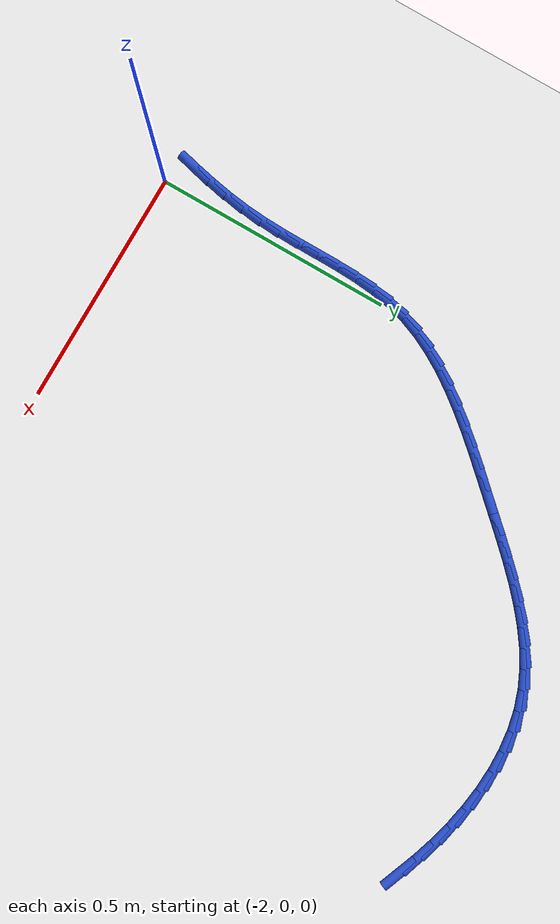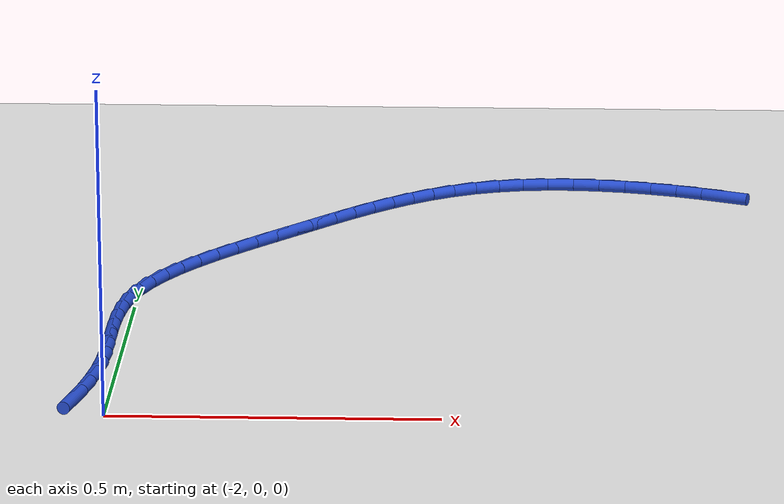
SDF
<sdf version="1.6">
 <world name="default">
  <model name="ground_plane">
   <static>1</static>
   <link name="link">
    <collision name="collision">
     <geometry><plane><normal>0 0 1</normal><size>100 100</size></plane></geometry>
     <surface><friction><ode><mu>100</mu><mu2>50</mu2></ode></friction></surface>
    </collision>
    <visual name="visual">
     <cast_shadows>0</cast_shadows>
     <geometry><plane><normal>0 0 1</normal><size>100 100</size></plane></geometry>
     <material>
      <script><uri>file://media/materials/scripts/gazebo.material</uri><name>Gazebo/WhiteGlow</name></script>
     </material>
    </visual>
   </link>
  </model>
  <model name="line">
   <link name="link_38">
    <pose>-1.0534748251771269 1.0840542908603117 0.01 0 1.57 -0.3746542257135561</pose>
    <collision name="collision">
     <geometry><cylinder><radius>0.01</radius><length>0.08</length></cylinder></geometry>
    </collision>
    <visual name="visual">
     <material>
      <script><name>Gazebo/Blue</name><uri>file://media/materials/scripts/gazebo.material</uri></script>
     </material>
     <geometry><cylinder><radius>0.01</radius><length>0.08</length></cylinder></geometry>
    </visual>
   </link>
   <link name="link_39">
    <pose>-1.0954421093681261 1.1005569719158432 0.01 0 1.57 -0.32050676634650327</pose>
    <collision name="collision">
     <geometry><cylinder><radius>0.01</radius><length>0.08</length></cylinder></geometry>
    </collision>
    <visual name="visual">
     <material>
      <script><name>Gazebo/Blue</name><uri>file://media/materials/scripts/gazebo.material</uri></script>
     </material>
     <geometry><cylinder><radius>0.01</radius><length>0.08</length></cylinder></geometry>
    </visual>
   </link>
   <link name="link_40">
    <pose>-1.1384295521239123 1.1148267360155222 0.01 0 1.57 -0.2634448168717703</pose>
    <collision name="collision">
     <geometry><cylinder><radius>0.01</radius><length>0.08</length></cylinder></geometry>
    </collision>
    <visual name="visual">
     <material>
      <script><name>Gazebo/Blue</name><uri>file://media/materials/scripts/gazebo.material</uri></script>
     </material>
     <geometry><cylinder><radius>0.01</radius><length>0.08</length></cylinder></geometry>
    </visual>
   </link>
   <link name="link_41">
    <pose>-1.1821002102781097 1.1266053037100558 0.01 0 1.57 -0.20232114689277186</pose>
    <collision name="collision">
     <geometry><cylinder><radius>0.01</radius><length>0.08</length></cylinder></geometry>
    </collision>
    <visual name="visual">
     <material>
      <script><name>Gazebo/Blue</name><uri>file://media/materials/scripts/gazebo.material</uri></script>
     </material>
     <geometry><cylinder><radius>0.01</radius><length>0.08</length></cylinder></geometry>
    </visual>
   </link>
   <link name="link_42">
    <pose>-1.2261171406643419 1.135634395550152 0.01 0 1.57 -0.1359236281425983</pose>
    <collision name="collision">
     <geometry><cylinder><radius>0.01</radius><length>0.08</length></cylinder></geometry>
    </collision>
    <visual name="visual">
     <material>
      <script><name>Gazebo/Blue</name><uri>file://media/materials/scripts/gazebo.material</uri></script>
     </material>
     <geometry><cylinder><radius>0.01</radius><length>0.08</length></cylinder></geometry>
    </visual>
   </link>
   <link name="link_43">
    <pose>-1.2701434001162317 1.1416557320865175 0.01 0 1.57 -0.06296898045122024</pose>
    <collision name="collision">
     <geometry><cylinder><radius>0.01</radius><length>0.08</length></cylinder></geometry>
    </collision>
    <visual name="visual">
     <material>
      <script><name>Gazebo/Blue</name><uri>file://media/materials/scripts/gazebo.material</uri></script>
     </material>
     <geometry><cylinder><radius>0.01</radius><length>0.08</length></cylinder></geometry>
    </visual>
   </link>
   <link name="link_44">
    <pose>-1.313842045467404 1.1444110338698605 0.01 0 1.57 0.017867941724929177</pose>
    <collision name="collision">
     <geometry><cylinder><radius>0.01</radius><length>0.08</length></cylinder></geometry>
    </collision>
    <visual name="visual">
     <material>
      <script><name>Gazebo/Blue</name><uri>file://media/materials/scripts/gazebo.material</uri></script>
     </material>
     <geometry><cylinder><radius>0.01</radius><length>0.08</length></cylinder></geometry>
    </visual>
   </link>
   <link name="link_45">
    <pose>-1.3568761335514812 1.1436420214508887 0.01 0 1.57 0.10786723949178444</pose>
    <collision name="collision">
     <geometry><cylinder><radius>0.01</radius><length>0.08</length></cylinder></geometry>
    </collision>
    <visual name="visual">
     <material>
      <script><name>Gazebo/Blue</name><uri>file://media/materials/scripts/gazebo.material</uri></script>
     </material>
     <geometry><cylinder><radius>0.01</radius><length>0.08</length></cylinder></geometry>
    </visual>
   </link>
   <link name="link_46">
    <pose>-1.3989087212020876 1.1390904153803083 0.01 0 1.57 0.20809126432651076</pose>
    <collision name="collision">
     <geometry><cylinder><radius>0.01</radius><length>0.08</length></cylinder></geometry>
    </collision>
    <visual name="visual">
     <material>
      <script><name>Gazebo/Blue</name><uri>file://media/materials/scripts/gazebo.material</uri></script>
     </material>
     <geometry><cylinder><radius>0.01</radius><length>0.08</length></cylinder></geometry>
    </visual>
   </link>
   <link name="link_47">
    <pose>-1.4396028652528463 1.130497936208828 0.01 0 1.57 0.31896822076236286</pose>
    <collision name="collision">
     <geometry><cylinder><radius>0.01</radius><length>0.08</length></cylinder></geometry>
    </collision>
    <visual name="visual">
     <material>
      <script><name>Gazebo/Blue</name><uri>file://media/materials/scripts/gazebo.material</uri></script>
     </material>
     <geometry><cylinder><radius>0.01</radius><length>0.08</length></cylinder></geometry>
    </visual>
   </link>
   <link name="link_48">
    <pose>-1.4786251119743778 1.117611045731805 0.01 0 1.57 0.4317569409458788</pose>
    <collision name="collision">
     <geometry><cylinder><radius>0.01</radius><length>0.08</length></cylinder></geometry>
    </collision>
    <visual name="visual">
     <material>
      <script><name>Gazebo/Blue</name><uri>file://media/materials/scripts/gazebo.material</uri></script>
     </material>
     <geometry><cylinder><radius>0.01</radius><length>0.08</length></cylinder></geometry>
    </visual>
   </link>
   <link name="link_49">
    <pose>-1.5158504911998227 1.100459481120133 0.01 0 1.57 0.5315474989459231</pose>
    <collision name="collision">
     <geometry><cylinder><radius>0.01</radius><length>0.08</length></cylinder></geometry>
    </collision>
    <visual name="visual">
     <material>
      <script><name>Gazebo/Blue</name><uri>file://media/materials/scripts/gazebo.material</uri></script>
     </material>
     <geometry><cylinder><radius>0.01</radius><length>0.08</length></cylinder></geometry>
    </visual>
   </link>
   <link name="link_50">
    <pose>-1.5514766757755392 1.0795113681621415 0.01 0 1.57 0.615846117902603</pose>
    <collision name="collision">
     <geometry><cylinder><radius>0.01</radius><length>0.08</length></cylinder></geometry>
    </collision>
    <visual name="visual">
     <material>
      <script><name>Gazebo/Blue</name><uri>file://media/materials/scripts/gazebo.material</uri></script>
     </material>
     <geometry><cylinder><radius>0.01</radius><length>0.08</length></cylinder></geometry>
    </visual>
   </link>
   <link name="link_51">
    <pose>-1.5857290336706389 1.0552724631730186 0.01 0 1.57 0.6846235005672875</pose>
    <collision name="collision">
     <geometry><cylinder><radius>0.01</radius><length>0.08</length></cylinder></geometry>
    </collision>
    <visual name="visual">
     <material>
      <script><name>Gazebo/Blue</name><uri>file://media/materials/scripts/gazebo.material</uri></script>
     </material>
     <geometry><cylinder><radius>0.01</radius><length>0.08</length></cylinder></geometry>
    </visual>
   </link>
   <link name="link_52">
    <pose>-1.6188329328542335 1.028248522467953 0.01 0 1.57 0.7386300824438513</pose>
    <collision name="collision">
     <geometry><cylinder><radius>0.01</radius><length>0.08</length></cylinder></geometry>
    </collision>
    <visual name="visual">
     <material>
      <script><name>Gazebo/Blue</name><uri>file://media/materials/scripts/gazebo.material</uri></script>
     </material>
     <geometry><cylinder><radius>0.01</radius><length>0.08</length></cylinder></geometry>
    </visual>
   </link>
   <link name="link_53">
    <pose>-1.6510137412954358 0.9989453023621324 0.01 0 1.57 0.7789029927780443</pose>
    <collision name="collision">
     <geometry><cylinder><radius>0.01</radius><length>0.08</length></cylinder></geometry>
    </collision>
    <visual name="visual">
     <material>
      <script><name>Gazebo/Blue</name><uri>file://media/materials/scripts/gazebo.material</uri></script>
     </material>
     <geometry><cylinder><radius>0.01</radius><length>0.08</length></cylinder></geometry>
    </visual>
   </link>
   <link name="link_54">
    <pose>-1.682496826963357 0.9678685591707453 0.01 0 1.57 0.806447441847633</pose>
    <collision name="collision">
     <geometry><cylinder><radius>0.01</radius><length>0.08</length></cylinder></geometry>
    </collision>
    <visual name="visual">
     <material>
      <script><name>Gazebo/Blue</name><uri>file://media/materials/scripts/gazebo.material</uri></script>
     </material>
     <geometry><cylinder><radius>0.01</radius><length>0.08</length></cylinder></geometry>
    </visual>
   </link>
   <link name="link_55">
    <pose>-1.7135075578271097 0.9355240492089798 0.01 0 1.57 0.82206196255046</pose>
    <collision name="collision">
     <geometry><cylinder><radius>0.01</radius><length>0.08</length></cylinder></geometry>
    </collision>
    <visual name="visual">
     <material>
      <script><name>Gazebo/Blue</name><uri>file://media/materials/scripts/gazebo.material</uri></script>
     </material>
     <geometry><cylinder><radius>0.01</radius><length>0.08</length></cylinder></geometry>
    </visual>
   </link>
   <link name="link_56">
    <pose>-1.7442713018558058 0.9024175287920229 0.01 0 1.57 0.8262953286771116</pose>
    <collision name="collision">
     <geometry><cylinder><radius>0.01</radius><length>0.08</length></cylinder></geometry>
    </collision>
    <visual name="visual">
     <material>
      <script><name>Gazebo/Blue</name><uri>file://media/materials/scripts/gazebo.material</uri></script>
     </material>
     <geometry><cylinder><radius>0.01</radius><length>0.08</length></cylinder></geometry>
    </visual>
   </link>
   <link name="link_57">
    <pose>-1.775012148666819 0.869053512135963 0.01 0 1.57 0.8255865061730806</pose>
    <collision name="collision">
     <geometry><cylinder><radius>0.01</radius><length>0.08</length></cylinder></geometry>
    </collision>
    <visual name="visual">
     <material>
      <script><name>Gazebo/Blue</name><uri>file://media/materials/scripts/gazebo.material</uri></script>
     </material>
     <geometry><cylinder><radius>0.01</radius><length>0.08</length></cylinder></geometry>
    </visual>
   </link>
   <link name="link_58">
    <pose>-1.8057509955805144 0.8357390834681213 0.01 0 1.57 0.8330159238079928</pose>
    <collision name="collision">
     <geometry><cylinder><radius>0.01</radius><length>0.08</length></cylinder></geometry>
    </collision>
    <visual name="visual">
     <material>
      <script><name>Gazebo/Blue</name><uri>file://media/materials/scripts/gazebo.material</uri></script>
     </material>
     <geometry><cylinder><radius>0.01</radius><length>0.08</length></cylinder></geometry>
    </visual>
   </link>
   <link name="link_59">
    <pose>-1.8360848799427312 0.8023694872401915 0.01 0 1.57 0.8504589798484335</pose>
    <collision name="collision">
     <geometry><cylinder><radius>0.01</radius><length>0.08</length></cylinder></geometry>
    </collision>
    <visual name="visual">
     <material>
      <script><name>Gazebo/Blue</name><uri>file://media/materials/scripts/gazebo.material</uri></script>
     </material>
     <geometry><cylinder><radius>0.01</radius><length>0.08</length></cylinder></geometry>
    </visual>
   </link>
   <link name="link_60">
    <pose>-1.8655577965014776 0.7687884295352961 0.01 0 1.57 0.8784048352163771</pose>
    <collision name="collision">
     <geometry><cylinder><radius>0.01</radius><length>0.08</length></cylinder></geometry>
    </collision>
    <visual name="visual">
     <material>
      <script><name>Gazebo/Blue</name><uri>file://media/materials/scripts/gazebo.material</uri></script>
     </material>
     <geometry><cylinder><radius>0.01</radius><length>0.08</length></cylinder></geometry>
    </visual>
   </link>
   <link name="link_61">
    <pose>-1.8937137400047601 0.7348396164365565 0.01 0 1.57 0.9175587481591925</pose>
    <collision name="collision">
     <geometry><cylinder><radius>0.01</radius><length>0.08</length></cylinder></geometry>
    </collision>
    <visual name="visual">
     <material>
      <script><name>Gazebo/Blue</name><uri>file://media/materials/scripts/gazebo.material</uri></script>
     </material>
     <geometry><cylinder><radius>0.01</radius><length>0.08</length></cylinder></geometry>
    </visual>
   </link>
   <link name="link_62">
    <pose>-1.9200967052005875 0.7003667540270958 0.01 0 1.57 0.9687765132740612</pose>
    <collision name="collision">
     <geometry><cylinder><radius>0.01</radius><length>0.08</length></cylinder></geometry>
    </collision>
    <visual name="visual">
     <material>
      <script><name>Gazebo/Blue</name><uri>file://media/materials/scripts/gazebo.material</uri></script>
     </material>
     <geometry><cylinder><radius>0.01</radius><length>0.08</length></cylinder></geometry>
    </visual>
   </link>
   <link name="link_63">
    <pose>-1.944250686836966 0.6652135483900354 0.01 0 1.57 1.032932779184081</pose>
    <collision name="collision">
     <geometry><cylinder><radius>0.01</radius><length>0.08</length></cylinder></geometry>
    </collision>
    <visual name="visual">
     <material>
      <script><name>Gazebo/Blue</name><uri>file://media/materials/scripts/gazebo.material</uri></script>
     </material>
     <geometry><cylinder><radius>0.01</radius><length>0.08</length></cylinder></geometry>
    </visual>
   </link>
   <link name="link_64">
    <pose>-1.9657196796619039 0.6292237056084983 0.01 0 1.57 1.1106893223865641</pose>
    <collision name="collision">
     <geometry><cylinder><radius>0.01</radius><length>0.08</length></cylinder></geometry>
    </collision>
    <visual name="visual">
     <material>
      <script><name>Gazebo/Blue</name><uri>file://media/materials/scripts/gazebo.material</uri></script>
     </material>
     <geometry><cylinder><radius>0.01</radius><length>0.08</length></cylinder></geometry>
    </visual>
   </link>
   <link name="link_65">
    <pose>-1.9840476784234078 0.592240931765606 0.01 0 1.57 1.2021419151035606</pose>
    <collision name="collision">
     <geometry><cylinder><radius>0.01</radius><length>0.08</length></cylinder></geometry>
    </collision>
    <visual name="visual">
     <material>
      <script><name>Gazebo/Blue</name><uri>file://media/materials/scripts/gazebo.material</uri></script>
     </material>
     <geometry><cylinder><radius>0.01</radius><length>0.08</length></cylinder></geometry>
    </visual>
   </link>
   <link name="link_66">
    <pose>-1.9987786778694856 0.5541089329444808 0.01 0 1.57 1.30553539822531</pose>
    <collision name="collision">
     <geometry><cylinder><radius>0.01</radius><length>0.08</length></cylinder></geometry>
    </collision>
    <visual name="visual">
     <material>
      <script><name>Gazebo/Blue</name><uri>file://media/materials/scripts/gazebo.material</uri></script>
     </material>
     <geometry><cylinder><radius>0.01</radius><length>0.08</length></cylinder></geometry>
    </visual>
   </link>
   <link name="link_67">
    <pose>-2.009489838312924 0.5146807756699984 0.01 0 1.57 1.4024591504643038</pose>
    <collision name="collision">
     <geometry><cylinder><radius>0.01</radius><length>0.08</length></cylinder></geometry>
    </collision>
    <visual name="visual">
     <material>
      <script><name>Gazebo/Blue</name><uri>file://media/materials/scripts/gazebo.material</uri></script>
     </material>
     <geometry><cylinder><radius>0.01</radius><length>0.08</length></cylinder></geometry>
    </visual>
   </link>
   <link name="link_68">
    <pose>-2.0164047186364913 0.47399196196010696 0.01 0 1.57 1.4769411322177208</pose>
    <collision name="collision">
     <geometry><cylinder><radius>0.01</radius><length>0.08</length></cylinder></geometry>
    </collision>
    <visual name="visual">
     <material>
      <script><name>Gazebo/Blue</name><uri>file://media/materials/scripts/gazebo.material</uri></script>
     </material>
     <geometry><cylinder><radius>0.01</radius><length>0.08</length></cylinder></geometry>
    </visual>
   </link>
   <link name="link_69">
    <pose>-2.020334541373556 0.4322438523492146 0.01 0 1.57 1.5290981531068213</pose>
    <collision name="collision">
     <geometry><cylinder><radius>0.01</radius><length>0.08</length></cylinder></geometry>
    </collision>
    <visual name="visual">
     <material>
      <script><name>Gazebo/Blue</name><uri>file://media/materials/scripts/gazebo.material</uri></script>
     </material>
     <geometry><cylinder><radius>0.01</radius><length>0.08</length></cylinder></geometry>
    </visual>
   </link>
   <link name="link_70">
    <pose>-2.0221119142109956 0.3896438429838205 0.01 0 1.57 1.5602166365020065</pose>
    <collision name="collision">
     <geometry><cylinder><radius>0.01</radius><length>0.08</length></cylinder></geometry>
    </collision>
    <visual name="visual">
     <material>
      <script><name>Gazebo/Blue</name><uri>file://media/materials/scripts/gazebo.material</uri></script>
     </material>
     <geometry><cylinder><radius>0.01</radius><length>0.08</length></cylinder></geometry>
    </visual>
   </link>
   <link name="link_71">
    <pose>-2.0225694448356926 0.34639933001042483 0.01 0 1.57 -1.5701163177592612</pose>
    <collision name="collision">
     <geometry><cylinder><radius>0.01</radius><length>0.08</length></cylinder></geometry>
    </collision>
    <visual name="visual">
     <material>
      <script><name>Gazebo/Blue</name><uri>file://media/materials/scripts/gazebo.material</uri></script>
     </material>
     <geometry><cylinder><radius>0.01</radius><length>0.08</length></cylinder></geometry>
    </visual>
   </link>
   <link name="link_72">
    <pose>-2.022539740934527 0.30271770957552824 0.01 0 1.57 1.5636076625105153</pose>
    <collision name="collision">
     <geometry><cylinder><radius>0.01</radius><length>0.08</length></cylinder></geometry>
    </collision>
    <visual name="visual">
     <material>
      <script><name>Gazebo/Blue</name><uri>file://media/materials/scripts/gazebo.material</uri></script>
     </material>
     <geometry><cylinder><radius>0.01</radius><length>0.08</length></cylinder></geometry>
    </visual>
   </link>
   <link name="link_73">
    <pose>-2.0228554101943783 0.2588063778256298 0.01 0 1.57 1.5368115536102331</pose>
    <collision name="collision">
     <geometry><cylinder><radius>0.01</radius><length>0.08</length></cylinder></geometry>
    </collision>
    <visual name="visual">
     <material>
      <script><name>Gazebo/Blue</name><uri>file://media/materials/scripts/gazebo.material</uri></script>
     </material>
     <geometry><cylinder><radius>0.01</radius><length>0.08</length></cylinder></geometry>
    </visual>
   </link>
   <link name="link_74">
    <pose>-2.024349060302127 0.21487273090723066 0.01 0 1.57 1.4912900151780408</pose>
    <collision name="collision">
     <geometry><cylinder><radius>0.01</radius><length>0.08</length></cylinder></geometry>
    </collision>
    <visual name="visual">
     <material>
      <script><name>Gazebo/Blue</name><uri>file://media/materials/scripts/gazebo.material</uri></script>
     </material>
     <geometry><cylinder><radius>0.01</radius><length>0.08</length></cylinder></geometry>
    </visual>
   </link>
   <link name="link_75">
    <pose>-2.0278349789806054 0.17112060123102787 0.01 0 1.57 1.439061428745569</pose>
    <collision name="collision">
     <geometry><cylinder><radius>0.01</radius><length>0.08</length></cylinder></geometry>
    </collision>
    <visual name="visual">
     <material>
      <script><name>Gazebo/Blue</name><uri>file://media/materials/scripts/gazebo.material</uri></script>
     </material>
     <geometry><cylinder><radius>0.01</radius><length>0.08</length></cylinder></geometry>
    </visual>
   </link>
   <link name="link_76">
    <pose>-2.033594902526976 0.12765022533945006 0.01 0 1.57 1.3941419790321197</pose>
    <collision name="collision">
     <geometry><cylinder><radius>0.01</radius><length>0.08</length></cylinder></geometry>
    </collision>
    <visual name="visual">
     <material>
      <script><name>Gazebo/Blue</name><uri>file://media/materials/scripts/gazebo.material</uri></script>
     </material>
     <geometry><cylinder><radius>0.01</radius><length>0.08</length></cylinder></geometry>
    </visual>
   </link>
   <link name="link_77">
    <pose>-2.041307766468012 0.08444457848110261 0.01 0 1.57 1.3573525213867943</pose>
    <collision name="collision">
     <geometry><cylinder><radius>0.01</radius><length>0.08</length></cylinder></geometry>
    </collision>
    <visual name="visual">
     <material>
      <script><name>Gazebo/Blue</name><uri>file://media/materials/scripts/gazebo.material</uri></script>
     </material>
     <geometry><cylinder><radius>0.01</radius><length>0.08</length></cylinder></geometry>
    </visual>
   </link>
   <link name="link_78">
    <pose>-2.050620068843038 0.04148032592302804 0.01 0 1.57 1.3286447415477207</pose>
    <collision name="collision">
     <geometry><cylinder><radius>0.01</radius><length>0.08</length></cylinder></geometry>
    </collision>
    <visual name="visual">
     <material>
      <script><name>Gazebo/Blue</name><uri>file://media/materials/scripts/gazebo.material</uri></script>
     </material>
     <geometry><cylinder><radius>0.01</radius><length>0.08</length></cylinder></geometry>
    </visual>
   </link>
  </model>
 </world>
</sdf>
